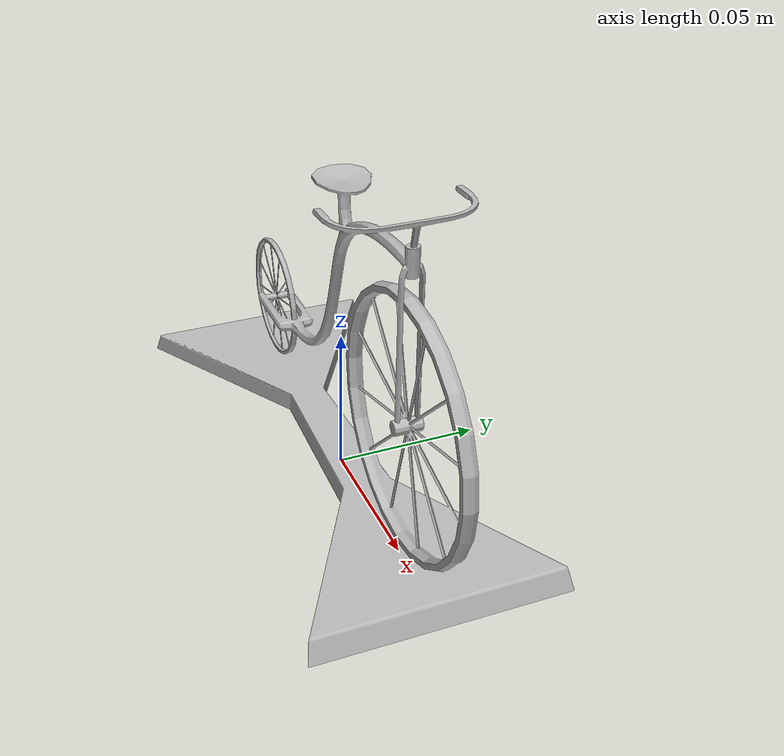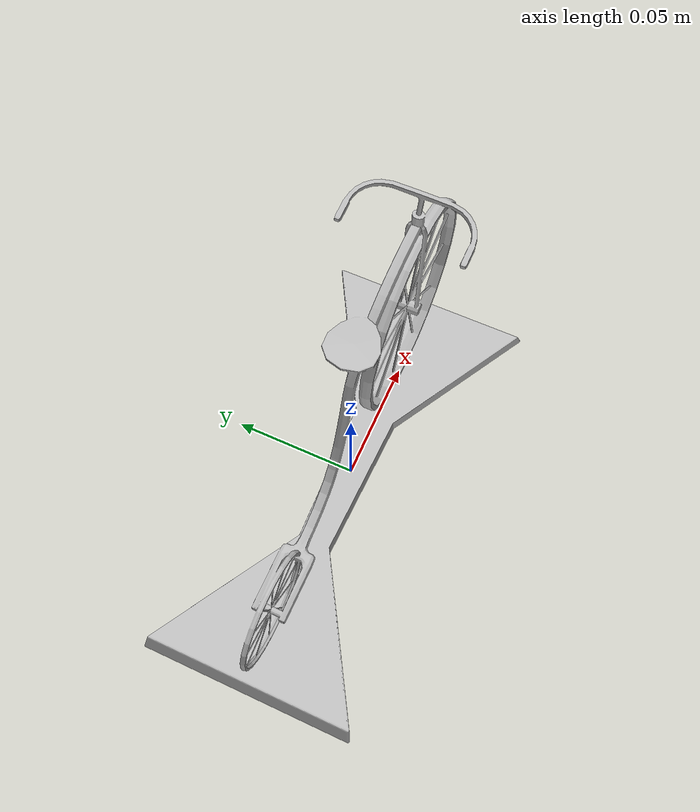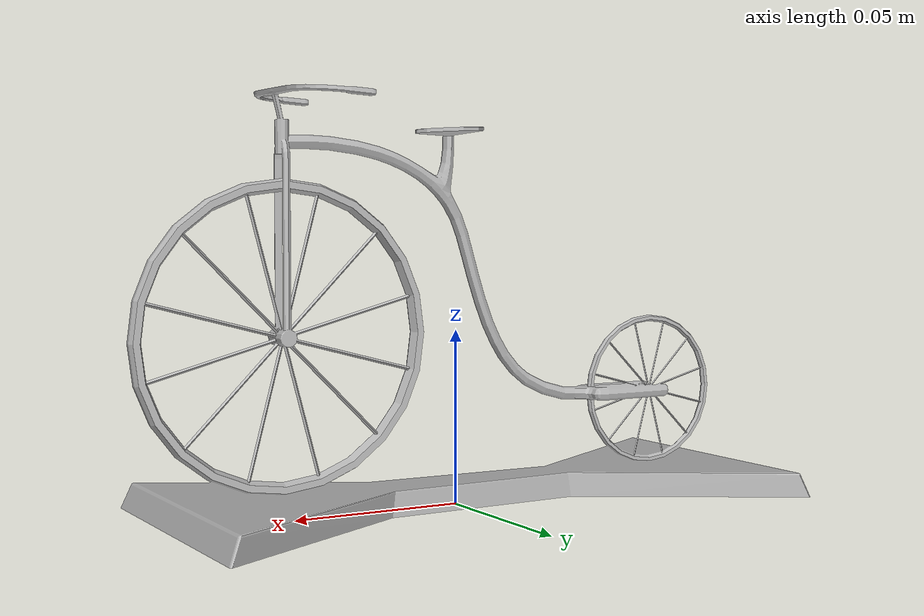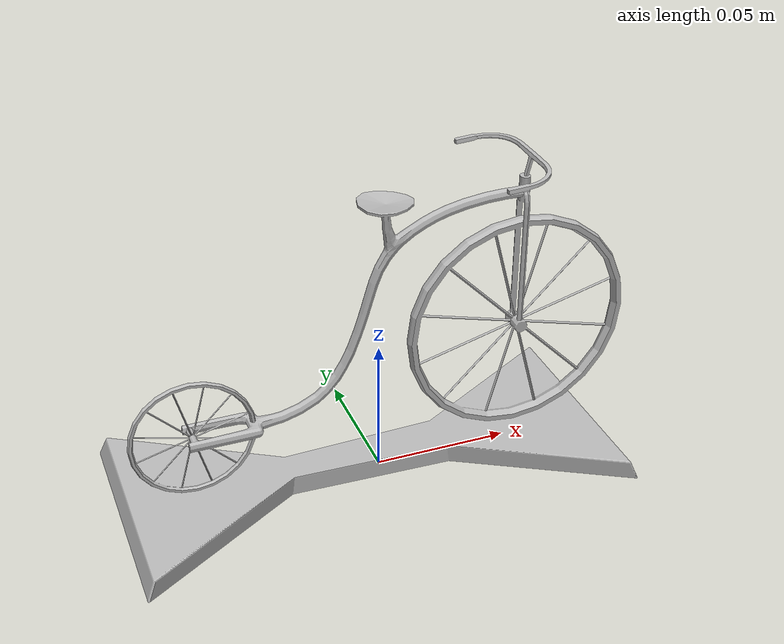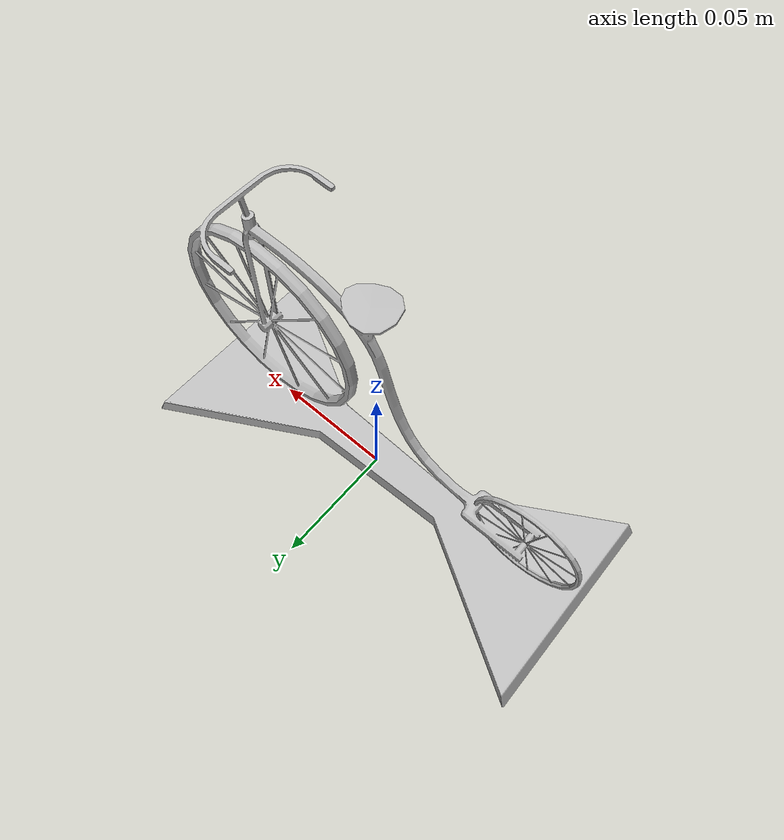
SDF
<?xml version="1.0" ?>
<sdf version="1.6">
  <model name="aws_robomaker_retail_Bicycle_01">
    <link name="link">
      <inertial>
        <mass>0.04</mass>
        <inertia>
          <ixx>0.10</ixx>
          <ixy>0</ixy>
          <ixz>0</ixz>
          <iyy>0.10</iyy>
          <iyz>0</iyz>
          <izz>0.01</izz>
        </inertia>
      </inertial>
      <collision name="collision">
        <geometry>
          <mesh>
            <uri>file://models/aws_robomaker_retail_Bicycle_01/meshes/aws_Bicycle_01_collision.DAE</uri>
            <scale>1 1 1</scale>
          </mesh>
        </geometry>
      </collision>
      <visual name="visual">
	    <geometry>
          <mesh>
            <uri>file://models/aws_robomaker_retail_Bicycle_01/meshes/aws_Bicycle_01_visual.DAE</uri>
          </mesh>
        </geometry>
        <meta>
          <layer>1</layer>
        </meta>
      </visual>
    </link>
      <static>1</static>
  </model>
</sdf>
